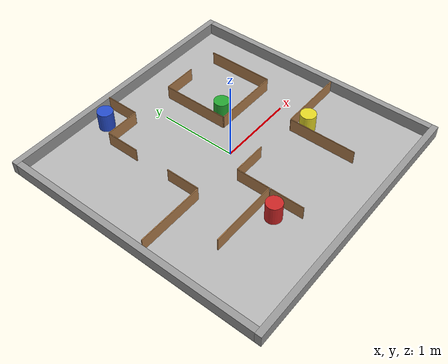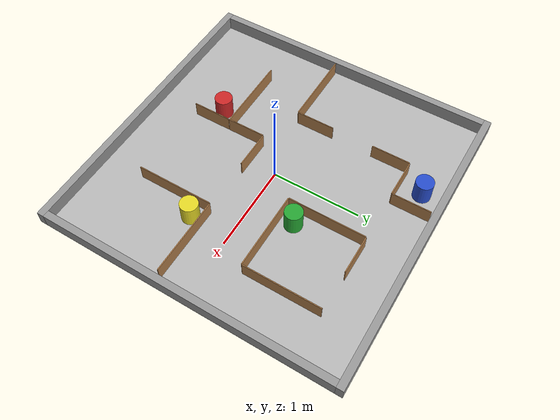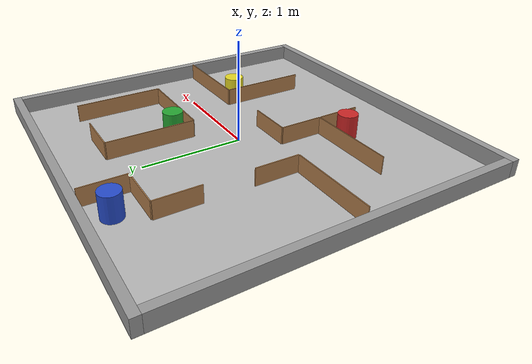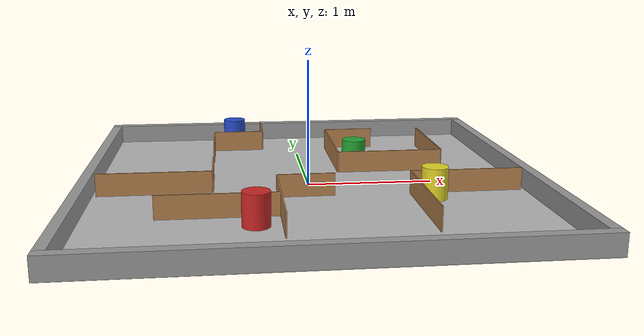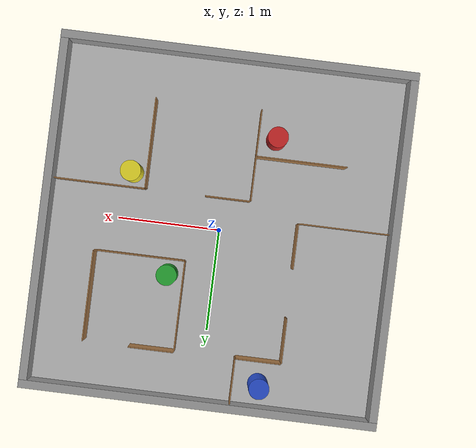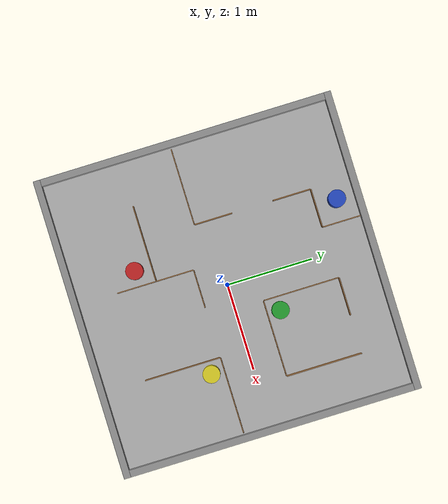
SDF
<sdf version="1.6">
 <world name="default">
  <light name="sun" type="directional">
   <pose>0 0 10 0 -0 0</pose>
   <diffuse>0.8 0.8 0.8 1</diffuse>
   <specular>0.2 0.2 0.2 1</specular>
   <attenuation>
    <range>1000</range>
    <constant>0.9</constant>
    <linear>0.01</linear>
    <quadratic>0.001</quadratic>
   </attenuation>
   <direction>-0.5 0.1 -0.9</direction>
  </light>
  <gravity>0 0 -9.8</gravity>
  <magnetic_field>6e-06 2.3e-05 -4.2e-05</magnetic_field>
  <atmosphere type="adiabatic"/>
  <physics name="default_physics" default="0" type="ode">
   <max_step_size>0.001</max_step_size>
   <real_time_factor>1</real_time_factor>
   <real_time_update_rate>1000</real_time_update_rate>
  </physics>
  <scene><ambient>0.4 0.4 0.4 1</ambient><background>0.7 0.7 0.7 1</background><shadows>1</shadows></scene>
  <spherical_coordinates>
   <surface_model>EARTH_WGS84</surface_model>
   <latitude_deg>0</latitude_deg>
   <longitude_deg>0</longitude_deg>
   <elevation>0</elevation>
   <heading_deg>0</heading_deg>
  </spherical_coordinates>
  <include><uri>model://exploration</uri></include>
  <include><uri>model://cr3_arena_walls</uri></include>
 </world>
</sdf>

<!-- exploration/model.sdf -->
<sdf version="1.4">
<model name="exploration">
  <static>true</static>
    <link name="floor">
      <collision name="collision">
        <geometry>
          <plane>
            <normal>0 0 1</normal>
            <size>3.5 3.5</size>
          </plane>
        </geometry>
        <surface>
          <friction>
            <ode>
              <mu>100</mu>
              <mu2>50</mu2>
            </ode>
          </friction>
        </surface>
      </collision>
      <visual name="visual">
        <cast_shadows>false</cast_shadows>
        <geometry>
          <plane>
            <normal>0 0 1</normal>
            <size>3.5 3.5</size>
          </plane>
        </geometry>
        <material>
          <script>
            <uri>model://exploration/materials/scripts</uri>
            <uri>model://exploration/materials/textures</uri>
            <name>ExplorationFloor/Image</name>
          </script>
        </material>
      </visual>
    </link>
    <link name='BLUE'>
      <pose frame=''>-0.56572 1.46094 0.125 0 0 0</pose>
      <collision name='coll'>
        <geometry>
          <cylinder>
            <radius>0.1</radius>
            <length>0.25</length>
          </cylinder>
        </geometry>
        <max_contacts>10</max_contacts>
        <surface>
          <bounce/>
          <friction>
            <ode/>
          </friction>
          <contact>
            <ode/>
          </contact>
        </surface>
      </collision>
      <visual name='vis'>
        <geometry>
          <cylinder>
            <radius>0.1</radius>
            <length>0.25</length>
          </cylinder>
        </geometry>
        <material>
          <script>
            <uri>file://media/materials/scripts/gazebo.material</uri>
            <name>Gazebo/Blue</name>
          </script>
        </material>
      </visual>
    </link>
    <link name='RED'>
      <pose frame=''>-0.45525 -0.95077 0.125 0 0 0</pose>
      <collision name='coll'>
        <geometry>
          <cylinder>
            <radius>0.1</radius>
            <length>0.25</length>
          </cylinder>
        </geometry>
        <max_contacts>10</max_contacts>
        <surface>
          <bounce/>
          <friction>
            <ode/>
          </friction>
          <contact>
            <ode/>
          </contact>
        </surface>
      </collision>
      <visual name='vis'>
        <geometry>
          <cylinder>
            <radius>0.1</radius>
            <length>0.25</length>
          </cylinder>
        </geometry>
        <material>
          <script>
            <uri>file://media/materials/scripts/gazebo.material</uri>
            <name>Gazebo/Red</name>
          </script>
        </material>
      </visual>
    </link>
    <link name='GREEN'>
      <pose frame=''>0.44531 0.48896 0.125 0 0 0</pose>
      <collision name='coll'>
        <geometry>
          <cylinder>
            <radius>0.1</radius>
            <length>0.25</length>
          </cylinder>
        </geometry>
        <max_contacts>10</max_contacts>
        <surface>
          <bounce/>
          <friction>
            <ode/>
          </friction>
          <contact>
            <ode/>
          </contact>
        </surface>
      </collision>
      <visual name='vis'>
        <geometry>
          <cylinder>
            <radius>0.1</radius>
            <length>0.25</length>
          </cylinder>
        </geometry>
        <material>
          <script>
            <uri>file://media/materials/scripts/gazebo.material</uri>
            <name>Gazebo/Green</name>
          </script>
        </material>
      </visual>
    </link>
    <link name='YELLOW'>
      <pose frame=''>0.90661 -0.46371 0.125 0 0 0</pose>
      <collision name='coll'>
        <geometry>
          <cylinder>
            <radius>0.1</radius>
            <length>0.25</length>
          </cylinder>
        </geometry>
        <max_contacts>10</max_contacts>
        <surface>
          <bounce/>
          <friction>
            <ode/>
          </friction>
          <contact>
            <ode/>
          </contact>
        </surface>
      </collision>
      <visual name='vis'>
        <geometry>
          <cylinder>
            <radius>0.1</radius>
            <length>0.25</length>
          </cylinder>
        </geometry>
        <material>
          <script>
            <uri>file://media/materials/scripts/gazebo.material</uri>
            <name>Gazebo/Yellow</name>
          </script>
        </material>
      </visual>
    </link>
    <link name='room_1'>
      <pose frame=''>1.19833 -0.75365 0.09 0 0 0</pose>
      <collision name='long_1coll'>
        <geometry>
          <box>
            <size>0.88 0.01 0.18</size>
          </box>
        </geometry>
        <pose frame=''>0.005 0.44 0 0 0 0</pose>
      </collision>
      <visual name='long_1vis'>
        <pose frame=''>0.005 0.44 0 0 0 0</pose>
        <geometry>
          <box>
            <size>0.88 0.01 0.18</size>
          </box>
        </geometry>
        <material>
          <script>
            <uri>file://media/materials/scripts/gazebo.material</uri>
            <name>Gazebo/Wood</name>
          </script>
        </material>
      </visual>
      <collision name='long_2coll'>
        <geometry>
          <box>
            <size>0.01 0.88 0.18</size>
          </box>
        </geometry>
        <pose frame=''>-0.44 -0.005 0 0 0 0</pose>
      </collision>
      <visual name='long_2vis'>
        <pose frame=''>-0.44 -0.005 0 0 0 0</pose>
        <geometry>
          <box>
            <size>0.01 0.88 0.18</size>
          </box>
        </geometry>
        <material>
          <script>
            <uri>file://media/materials/scripts/gazebo.material</uri>
            <name>Gazebo/Wood</name>
          </script>
        </material>
      </visual>
    </link>
    <link name='room_2'>
      <pose frame=''>0.73417 0.78209 0.09 0 0 0</pose>
      <collision name='long_1coll'>
        <geometry>
          <box>
            <size>0.01 0.88 0.18</size>
          </box>
        </geometry>
        <pose frame=''>-0.445 0 0 0 0 0</pose>
      </collision>
      <visual name='long_1vis'>
        <pose frame=''>-0.445 0 0 0 0 0</pose>
        <geometry>
          <box>
            <size>0.01 0.88 0.18</size>
          </box>
        </geometry>
        <material>
          <script>
            <uri>file://media/materials/scripts/gazebo.material</uri>
            <name>Gazebo/Wood</name>
          </script>
        </material>
      </visual>
      <collision name='short_1coll'>
        <geometry>
          <box>
            <size>0.44 0.01 0.18</size>
          </box>
        </geometry>
        <pose frame=''>-0.22 0.445 0 0 0 0</pose>
      </collision>
      <visual name='short_1vis'>
        <pose frame=''>-0.22 0.445 0 0 0 0</pose>
        <geometry>
          <box>
            <size>0.44 0.01 0.18</size>
          </box>
        </geometry>
        <material>
          <script>
            <uri>file://media/materials/scripts/gazebo.material</uri>
            <name>Gazebo/Wood</name>
          </script>
        </material>
      </visual>
      <collision name='long_2coll'>
        <geometry>
          <box>
            <size>0.88 0.01 0.18</size>
          </box>
        </geometry>
        <pose frame=''>0 -0.445 0 0 0 0</pose>
      </collision>
      <visual name='long_2vis'>
        <pose frame=''>0 -0.445 0 0 0 0</pose>
        <geometry>
          <box>
            <size>0.88 0.01 0.18</size>
          </box>
        </geometry>
        <material>
          <script>
            <uri>file://media/materials/scripts/gazebo.material</uri>
            <name>Gazebo/Wood</name>
          </script>
        </material>
      </visual>
      <collision name='long_3coll'>
        <geometry>
          <box>
            <size>0.01 0.88 0.18</size>
          </box>
        </geometry>
        <pose frame=''>0.445 0 0 0 0 0</pose>
      </collision>
      <visual name='long_3vis'>
        <pose frame=''>0.445 0 0 0 0 0</pose>
        <geometry>
          <box>
            <size>0.01 0.88 0.18</size>
          </box>
        </geometry>
        <material>
          <script>
            <uri>file://media/materials/scripts/gazebo.material</uri>
            <name>Gazebo/Wood</name>
          </script>
        </material>
      </visual>
    </link>
    <link name='room_3'>
      <pose frame=''>-0.49291 -0.75865 0.09 0 0 0</pose>
      <collision name='long_1coll'>
        <geometry>
          <box>
            <size>0.88 0.01 0.18</size>
          </box>
        </geometry>
        <pose frame=''>-0.225 0.005 0 0 0 0</pose>
      </collision>
      <visual name='long_1vis'>
        <pose frame=''>-0.225 0.005 0 0 0 0</pose>
        <geometry>
          <box>
            <size>0.88 0.01 0.18</size>
          </box>
        </geometry>
        <material>
          <script>
            <uri>file://media/materials/scripts/gazebo.material</uri>
            <name>Gazebo/Wood</name>
          </script>
        </material>
      </visual>
      <collision name='short_1coll'>
        <geometry>
          <box>
            <size>0.01 0.44 0.18</size>
          </box>
        </geometry>
        <pose frame=''>0.22 -0.23 0 0 0 0</pose>
      </collision>
      <visual name='short_1vis'>
        <pose frame=''>0.22 -0.23 0 0 0 0</pose>
        <geometry>
          <box>
            <size>0.01 0.44 0.18</size>
          </box>
        </geometry>
        <material>
          <script>
            <uri>file://media/materials/scripts/gazebo.material</uri>
            <name>Gazebo/Wood</name>
          </script>
        </material>
      </visual>
      <collision name='short_2coll'>
        <geometry>
          <box>
            <size>0.01 0.44 0.18</size>
          </box>
        </geometry>
        <pose frame=''>0.22 0.22 0 0 0 0</pose>
      </collision>
      <visual name='short_2vis'>
        <pose frame=''>0.22 0.22 0 0 0 0</pose>
        <geometry>
          <box>
            <size>0.01 0.44 0.18</size>
          </box>
        </geometry>
        <material>
          <script>
            <uri>file://media/materials/scripts/gazebo.material</uri>
            <name>Gazebo/Wood</name>
          </script>
        </material>
      </visual>
      <collision name='short_3coll'>
        <geometry>
          <box>
            <size>0.44 0.01 0.18</size>
          </box>
        </geometry>
        <pose frame=''>0.445 0.445 0 0 0 0</pose>
      </collision>
      <visual name='short_3vis'>
        <pose frame=''>0.445 0.445 0 0 0 0</pose>
        <geometry>
          <box>
            <size>0.44 0.01 0.18</size>
          </box>
        </geometry>
        <material>
          <script>
            <uri>file://media/materials/scripts/gazebo.material</uri>
            <name>Gazebo/Wood</name>
          </script>
        </material>
      </visual>
    </link>
    <link name='room_4'>
      <pose frame=''>-0.9723 0.74916 0.09 0 0 0</pose>
      <collision name='long_1coll'>
        <geometry>
          <box>
            <size>0.88 0.01 0.18</size>
          </box>
        </geometry>
        <pose frame=''>-0.23 -0.905 0 0 0 0</pose>
      </collision>
      <visual name='long_1vis'>
        <pose frame=''>-0.23 -0.905 0 0 0 0</pose>
        <geometry>
          <box>
            <size>0.88 0.01 0.18</size>
          </box>
        </geometry>
        <material>
          <script>
            <uri>file://media/materials/scripts/gazebo.material</uri>
            <name>Gazebo/Wood</name>
          </script>
        </material>
      </visual>
      <collision name='short_1coll'>
        <geometry>
          <box>
            <size>0.01 0.44 0.18</size>
          </box>
        </geometry>
        <pose frame=''>0.215 -0.68 0 0 0 0</pose>
      </collision>
      <visual name='short_1vis'>
        <pose frame=''>0.215 -0.68 0 0 0 0</pose>
        <geometry>
          <box>
            <size>0.01 0.44 0.18</size>
          </box>
        </geometry>
        <material>
          <script>
            <uri>file://media/materials/scripts/gazebo.material</uri>
            <name>Gazebo/Wood</name>
          </script>
        </material>
      </visual>
      <collision name='short_2coll'>
        <geometry>
          <box>
            <size>0.01 0.44 0.18</size>
          </box>
        </geometry>
        <pose frame=''>0.215 0.24 0 0 0 0</pose>
      </collision>
      <visual name='short_2vis'>
        <pose frame=''>0.215 0.24 0 0 0 0</pose>
        <geometry>
          <box>
            <size>0.01 0.44 0.18</size>
          </box>
        </geometry>
        <material>
          <script>
            <uri>file://media/materials/scripts/gazebo.material</uri>
            <name>Gazebo/Wood</name>
          </script>
        </material>
      </visual>
      <collision name='short_3coll'>
        <geometry>
          <box>
            <size>0.44 0.01 0.18</size>
          </box>
        </geometry>
        <pose frame=''>0.44 0.465 0 0 0 0</pose>
      </collision>
      <visual name='short_3vis'>
        <pose frame=''>0.44 0.465 0 0 0 0</pose>
        <geometry>
          <box>
            <size>0.44 0.01 0.18</size>
          </box>
        </geometry>
        <material>
          <script>
            <uri>file://media/materials/scripts/gazebo.material</uri>
            <name>Gazebo/Wood</name>
          </script>
        </material>
      </visual>
      <collision name='short_4coll'>
        <geometry>
          <box>
            <size>0.01 0.44 0.18</size>
          </box>
        </geometry>
        <pose frame=''>0.665 0.69 0 0 0 0</pose>
      </collision>
      <visual name='short_4vis'>
        <pose frame=''>0.665 0.69 0 0 0 0</pose>
        <geometry>
          <box>
            <size>0.01 0.44 0.18</size>
          </box>
        </geometry>
        <material>
          <script>
            <uri>file://media/materials/scripts/gazebo.material</uri>
            <name>Gazebo/Wood</name>
          </script>
        </material>
      </visual>
    </link>
  </model>
</sdf>

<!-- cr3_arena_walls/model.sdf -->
<sdf version='1.6'>
  <model name='small_arena_walls'>
    <pose frame=''>0 0 0.08 0 0 0</pose>
    <link name='Right_Wall'>
      <collision name='Right_Wall_Collision'>
        <geometry>
          <box>
            <size>3.50 0.08 0.16</size>
          </box>
        </geometry>
      </collision>
      <visual name='Right_Wall_Visual'>
        <geometry>
          <box>
            <size>3.50 0.08 0.16</size>
          </box>
        </geometry>
        <material>
          <script>
            <uri>file://media/materials/scripts/gazebo.material</uri>
            <name>Gazebo/Grey</name>
          </script>
          <ambient>1 1 1 1</ambient>
        </material>
      </visual>
      <pose frame=''>0 1.71 0 0 0 0</pose>
    </link>
    <link name='Back_Wall'>
      <collision name='Back_Wall_Collision'>
        <geometry>
          <box>
            <size>0.08 3.34 0.16</size>
          </box>
        </geometry>
      </collision>
      <visual name='Back_Wall_Visual'>
        <geometry>
          <box>
            <size>0.08 3.34 0.16</size>
          </box>
        </geometry>
        <material>
          <script>
            <uri>file://media/materials/scripts/gazebo.material</uri>
            <name>Gazebo/Grey</name>
          </script>
          <ambient>1 1 1 1</ambient>
        </material>
      </visual>
      <pose frame=''>-1.71 0 0 0 0 0</pose>
    </link>
    <link name='Left_Wall'>
      <collision name='Left_Wall_Collision'>
        <geometry>
          <box>
            <size>3.50 0.08 0.16</size>
          </box>
        </geometry>
      </collision>
      <visual name='Left_Wall_Visual'>
        <geometry>
          <box>
            <size>3.50 0.08 0.16</size>
          </box>
        </geometry>
        <material>
          <script>
            <uri>file://media/materials/scripts/gazebo.material</uri>
            <name>Gazebo/Grey</name>
          </script>
          <ambient>1 1 1 1</ambient>
        </material>
      </visual>
      <pose frame=''>0 -1.71 0 0 0 0</pose>
    </link>
    <link name='Front_Wall'>
      <collision name='Front_Wall_Collision'>
        <geometry>
          <box>
            <size>0.08 3.34 0.16</size>
          </box>
        </geometry>
      </collision>
      <visual name='Front_Wall_Visual'>
        <geometry>
          <box>
            <size>0.08 3.34 0.16</size>
          </box>
        </geometry>
        <material>
          <script>
            <uri>file://media/materials/scripts/gazebo.material</uri>
            <name>Gazebo/Grey</name>
          </script>
          <ambient>1 1 1 1</ambient>
        </material>
      </visual>
      <pose frame=''>1.71 0 0 0 0 0</pose>
    </link>
    <static>1</static>
  </model>
</sdf>
